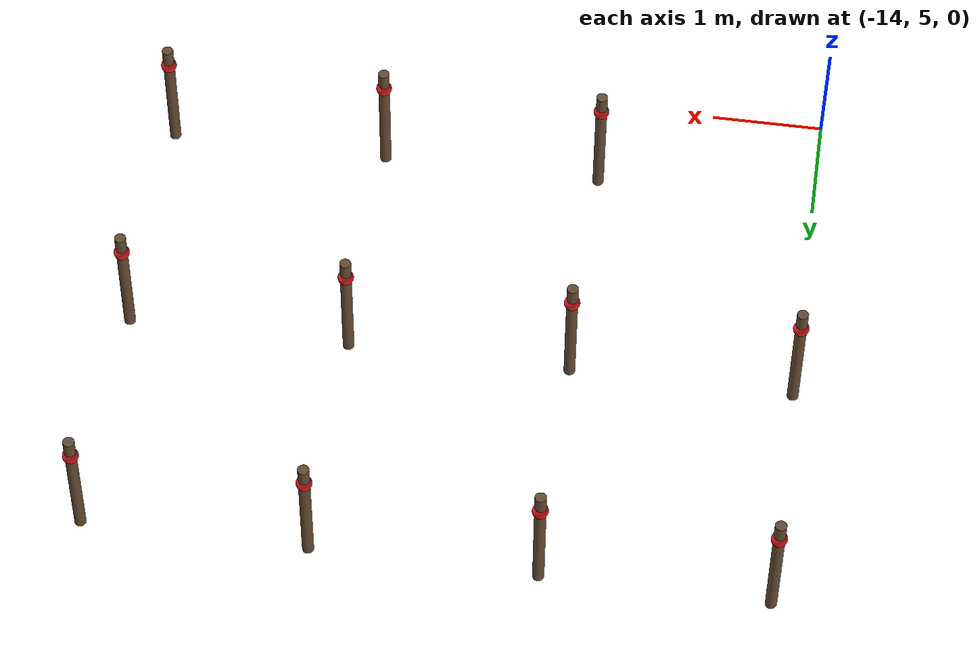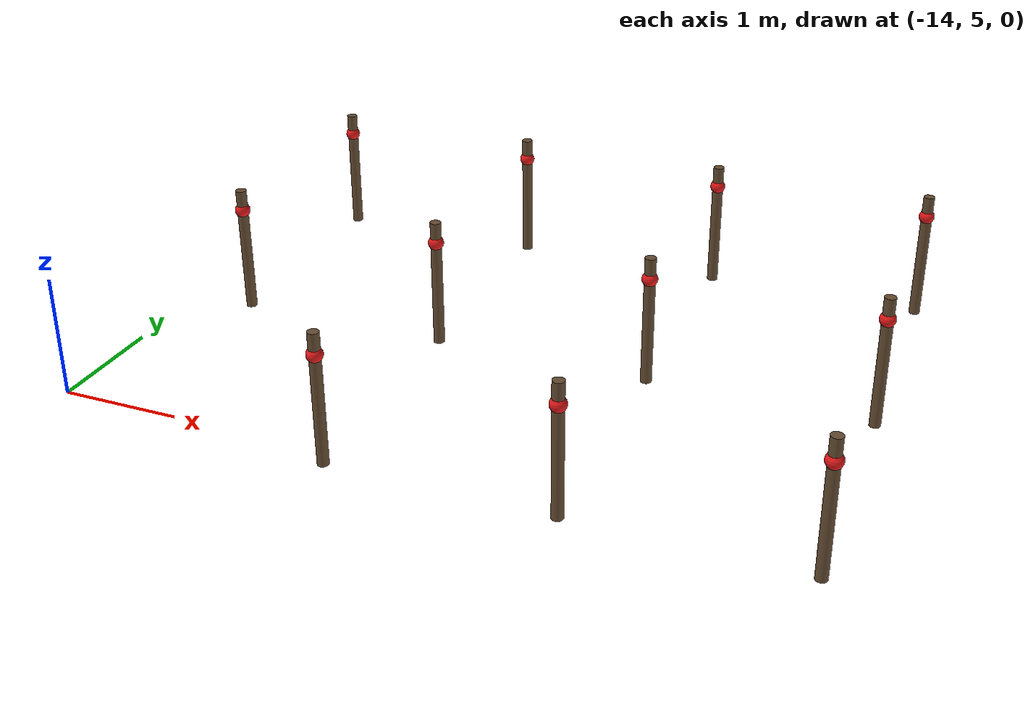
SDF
<sdf version="1.9">
 <world name="empty">
  <model name="row4_post_neg_4">
   <static>true</static>
   <pose>-8 5.5 -0.5 0 0 0</pose>
   <link name="vine_link">
    <collision name="post_collision">
     <geometry><cylinder><radius>0.05</radius><length>1.2</length></cylinder></geometry>
     <pose>0 0 0.6 0 0 0</pose>
    </collision>
    <visual name="post_visual">
     <geometry><cylinder><radius>0.05</radius><length>1.2</length></cylinder></geometry>
     <pose>0 0 0.6 0 0 0</pose>
     <material><diffuse>0.4 0.3 0.2 1</diffuse><ambient>0.4 0.3 0.2 1</ambient></material>
    </visual>
    <collision name="ball_collision">
     <geometry><sphere><radius>0.07</radius></sphere></geometry>
     <pose>0 0 1.0 0 0 0</pose>
    </collision>
    <visual name="ball_visual">
     <geometry><sphere><radius>0.07</radius></sphere></geometry>
     <pose>0 0 1.0 0 0 0</pose>
     <material><diffuse>0.9 0.1 0.1 1</diffuse><ambient>0.9 0.1 0.1 1</ambient></material>
    </visual>
   </link>
  </model>
  <model name="row4_post_neg_5">
   <static>true</static>
   <pose>-10 5.5 -0.5 0 0 0</pose>
   <link name="vine_link">
    <collision name="post_collision">
     <geometry><cylinder><radius>0.05</radius><length>1.2</length></cylinder></geometry>
     <pose>0 0 0.6 0 0 0</pose>
    </collision>
    <visual name="post_visual">
     <geometry><cylinder><radius>0.05</radius><length>1.2</length></cylinder></geometry>
     <pose>0 0 0.6 0 0 0</pose>
     <material><diffuse>0.4 0.3 0.2 1</diffuse><ambient>0.4 0.3 0.2 1</ambient></material>
    </visual>
    <collision name="ball_collision">
     <geometry><sphere><radius>0.07</radius></sphere></geometry>
     <pose>0 0 1.0 0 0 0</pose>
    </collision>
    <visual name="ball_visual">
     <geometry><sphere><radius>0.07</radius></sphere></geometry>
     <pose>0 0 1.0 0 0 0</pose>
     <material><diffuse>0.9 0.1 0.1 1</diffuse><ambient>0.9 0.1 0.1 1</ambient></material>
    </visual>
   </link>
  </model>
  <model name="row4_post_neg_6">
   <static>true</static>
   <pose>-12 5.5 -0.5 0 0 0</pose>
   <link name="vine_link">
    <collision name="post_collision">
     <geometry><cylinder><radius>0.05</radius><length>1.2</length></cylinder></geometry>
     <pose>0 0 0.6 0 0 0</pose>
    </collision>
    <visual name="post_visual">
     <geometry><cylinder><radius>0.05</radius><length>1.2</length></cylinder></geometry>
     <pose>0 0 0.6 0 0 0</pose>
     <material><diffuse>0.4 0.3 0.2 1</diffuse><ambient>0.4 0.3 0.2 1</ambient></material>
    </visual>
    <collision name="ball_collision">
     <geometry><sphere><radius>0.07</radius></sphere></geometry>
     <pose>0 0 1.0 0 0 0</pose>
    </collision>
    <visual name="ball_visual">
     <geometry><sphere><radius>0.07</radius></sphere></geometry>
     <pose>0 0 1.0 0 0 0</pose>
     <material><diffuse>0.9 0.1 0.1 1</diffuse><ambient>0.9 0.1 0.1 1</ambient></material>
    </visual>
   </link>
  </model>
  <model name="row5_post_neg_4">
   <static>true</static>
   <pose>-8 7.7 -0.5 0 0 0</pose>
   <link name="vine_link">
    <collision name="post_collision">
     <geometry><cylinder><radius>0.05</radius><length>1.2</length></cylinder></geometry>
     <pose>0 0 0.6 0 0 0</pose>
    </collision>
    <visual name="post_visual">
     <geometry><cylinder><radius>0.05</radius><length>1.2</length></cylinder></geometry>
     <pose>0 0 0.6 0 0 0</pose>
     <material><diffuse>0.4 0.3 0.2 1</diffuse><ambient>0.4 0.3 0.2 1</ambient></material>
    </visual>
    <collision name="ball_collision">
     <geometry><sphere><radius>0.07</radius></sphere></geometry>
     <pose>0 0 1.0 0 0 0</pose>
    </collision>
    <visual name="ball_visual">
     <geometry><sphere><radius>0.07</radius></sphere></geometry>
     <pose>0 0 1.0 0 0 0</pose>
     <material><diffuse>0.9 0.1 0.1 1</diffuse><ambient>0.9 0.1 0.1 1</ambient></material>
    </visual>
   </link>
  </model>
  <model name="row5_post_neg_5">
   <static>true</static>
   <pose>-10 7.7 -0.5 0 0 0</pose>
   <link name="vine_link">
    <collision name="post_collision">
     <geometry><cylinder><radius>0.05</radius><length>1.2</length></cylinder></geometry>
     <pose>0 0 0.6 0 0 0</pose>
    </collision>
    <visual name="post_visual">
     <geometry><cylinder><radius>0.05</radius><length>1.2</length></cylinder></geometry>
     <pose>0 0 0.6 0 0 0</pose>
     <material><diffuse>0.4 0.3 0.2 1</diffuse><ambient>0.4 0.3 0.2 1</ambient></material>
    </visual>
    <collision name="ball_collision">
     <geometry><sphere><radius>0.07</radius></sphere></geometry>
     <pose>0 0 1.0 0 0 0</pose>
    </collision>
    <visual name="ball_visual">
     <geometry><sphere><radius>0.07</radius></sphere></geometry>
     <pose>0 0 1.0 0 0 0</pose>
     <material><diffuse>0.9 0.1 0.1 1</diffuse><ambient>0.9 0.1 0.1 1</ambient></material>
    </visual>
   </link>
  </model>
  <model name="row5_post_neg_6">
   <static>true</static>
   <pose>-12 7.7 -0.5 0 0 0</pose>
   <link name="vine_link">
    <collision name="post_collision">
     <geometry><cylinder><radius>0.05</radius><length>1.2</length></cylinder></geometry>
     <pose>0 0 0.6 0 0 0</pose>
    </collision>
    <visual name="post_visual">
     <geometry><cylinder><radius>0.05</radius><length>1.2</length></cylinder></geometry>
     <pose>0 0 0.6 0 0 0</pose>
     <material><diffuse>0.4 0.3 0.2 1</diffuse><ambient>0.4 0.3 0.2 1</ambient></material>
    </visual>
    <collision name="ball_collision">
     <geometry><sphere><radius>0.07</radius></sphere></geometry>
     <pose>0 0 1.0 0 0 0</pose>
    </collision>
    <visual name="ball_visual">
     <geometry><sphere><radius>0.07</radius></sphere></geometry>
     <pose>0 0 1.0 0 0 0</pose>
     <material><diffuse>0.9 0.1 0.1 1</diffuse><ambient>0.9 0.1 0.1 1</ambient></material>
    </visual>
   </link>
  </model>
  <model name="row5_post_neg_7">
   <static>true</static>
   <pose>-14 7.7 -0.5 0 0 0</pose>
   <link name="vine_link">
    <collision name="post_collision">
     <geometry><cylinder><radius>0.05</radius><length>1.2</length></cylinder></geometry>
     <pose>0 0 0.6 0 0 0</pose>
    </collision>
    <visual name="post_visual">
     <geometry><cylinder><radius>0.05</radius><length>1.2</length></cylinder></geometry>
     <pose>0 0 0.6 0 0 0</pose>
     <material><diffuse>0.4 0.3 0.2 1</diffuse><ambient>0.4 0.3 0.2 1</ambient></material>
    </visual>
    <collision name="ball_collision">
     <geometry><sphere><radius>0.07</radius></sphere></geometry>
     <pose>0 0 1.0 0 0 0</pose>
    </collision>
    <visual name="ball_visual">
     <geometry><sphere><radius>0.07</radius></sphere></geometry>
     <pose>0 0 1.0 0 0 0</pose>
     <material><diffuse>0.9 0.1 0.1 1</diffuse><ambient>0.9 0.1 0.1 1</ambient></material>
    </visual>
   </link>
  </model>
  <model name="row6_post_neg_4">
   <static>true</static>
   <pose>-8 9.9 -0.5 0 0 0</pose>
   <link name="vine_link">
    <collision name="post_collision">
     <geometry><cylinder><radius>0.05</radius><length>1.2</length></cylinder></geometry>
     <pose>0 0 0.6 0 0 0</pose>
    </collision>
    <visual name="post_visual">
     <geometry><cylinder><radius>0.05</radius><length>1.2</length></cylinder></geometry>
     <pose>0 0 0.6 0 0 0</pose>
     <material><diffuse>0.4 0.3 0.2 1</diffuse><ambient>0.4 0.3 0.2 1</ambient></material>
    </visual>
    <collision name="ball_collision">
     <geometry><sphere><radius>0.07</radius></sphere></geometry>
     <pose>0 0 1.0 0 0 0</pose>
    </collision>
    <visual name="ball_visual">
     <geometry><sphere><radius>0.07</radius></sphere></geometry>
     <pose>0 0 1.0 0 0 0</pose>
     <material><diffuse>0.9 0.1 0.1 1</diffuse><ambient>0.9 0.1 0.1 1</ambient></material>
    </visual>
   </link>
  </model>
  <model name="row6_post_neg_5">
   <static>true</static>
   <pose>-10 9.9 -0.5 0 0 0</pose>
   <link name="vine_link">
    <collision name="post_collision">
     <geometry><cylinder><radius>0.05</radius><length>1.2</length></cylinder></geometry>
     <pose>0 0 0.6 0 0 0</pose>
    </collision>
    <visual name="post_visual">
     <geometry><cylinder><radius>0.05</radius><length>1.2</length></cylinder></geometry>
     <pose>0 0 0.6 0 0 0</pose>
     <material><diffuse>0.4 0.3 0.2 1</diffuse><ambient>0.4 0.3 0.2 1</ambient></material>
    </visual>
    <collision name="ball_collision">
     <geometry><sphere><radius>0.07</radius></sphere></geometry>
     <pose>0 0 1.0 0 0 0</pose>
    </collision>
    <visual name="ball_visual">
     <geometry><sphere><radius>0.07</radius></sphere></geometry>
     <pose>0 0 1.0 0 0 0</pose>
     <material><diffuse>0.9 0.1 0.1 1</diffuse><ambient>0.9 0.1 0.1 1</ambient></material>
    </visual>
   </link>
  </model>
  <model name="row6_post_neg_6">
   <static>true</static>
   <pose>-12 9.9 -0.5 0 0 0</pose>
   <link name="vine_link">
    <collision name="post_collision">
     <geometry><cylinder><radius>0.05</radius><length>1.2</length></cylinder></geometry>
     <pose>0 0 0.6 0 0 0</pose>
    </collision>
    <visual name="post_visual">
     <geometry><cylinder><radius>0.05</radius><length>1.2</length></cylinder></geometry>
     <pose>0 0 0.6 0 0 0</pose>
     <material><diffuse>0.4 0.3 0.2 1</diffuse><ambient>0.4 0.3 0.2 1</ambient></material>
    </visual>
    <collision name="ball_collision">
     <geometry><sphere><radius>0.07</radius></sphere></geometry>
     <pose>0 0 1.0 0 0 0</pose>
    </collision>
    <visual name="ball_visual">
     <geometry><sphere><radius>0.07</radius></sphere></geometry>
     <pose>0 0 1.0 0 0 0</pose>
     <material><diffuse>0.9 0.1 0.1 1</diffuse><ambient>0.9 0.1 0.1 1</ambient></material>
    </visual>
   </link>
  </model>
  <model name="row6_post_neg_7">
   <static>true</static>
   <pose>-14 9.9 -0.5 0 0 0</pose>
   <link name="vine_link">
    <collision name="post_collision">
     <geometry><cylinder><radius>0.05</radius><length>1.2</length></cylinder></geometry>
     <pose>0 0 0.6 0 0 0</pose>
    </collision>
    <visual name="post_visual">
     <geometry><cylinder><radius>0.05</radius><length>1.2</length></cylinder></geometry>
     <pose>0 0 0.6 0 0 0</pose>
     <material><diffuse>0.4 0.3 0.2 1</diffuse><ambient>0.4 0.3 0.2 1</ambient></material>
    </visual>
    <collision name="ball_collision">
     <geometry><sphere><radius>0.07</radius></sphere></geometry>
     <pose>0 0 1.0 0 0 0</pose>
    </collision>
    <visual name="ball_visual">
     <geometry><sphere><radius>0.07</radius></sphere></geometry>
     <pose>0 0 1.0 0 0 0</pose>
     <material><diffuse>0.9 0.1 0.1 1</diffuse><ambient>0.9 0.1 0.1 1</ambient></material>
    </visual>
   </link>
  </model>
 </world>
</sdf>
